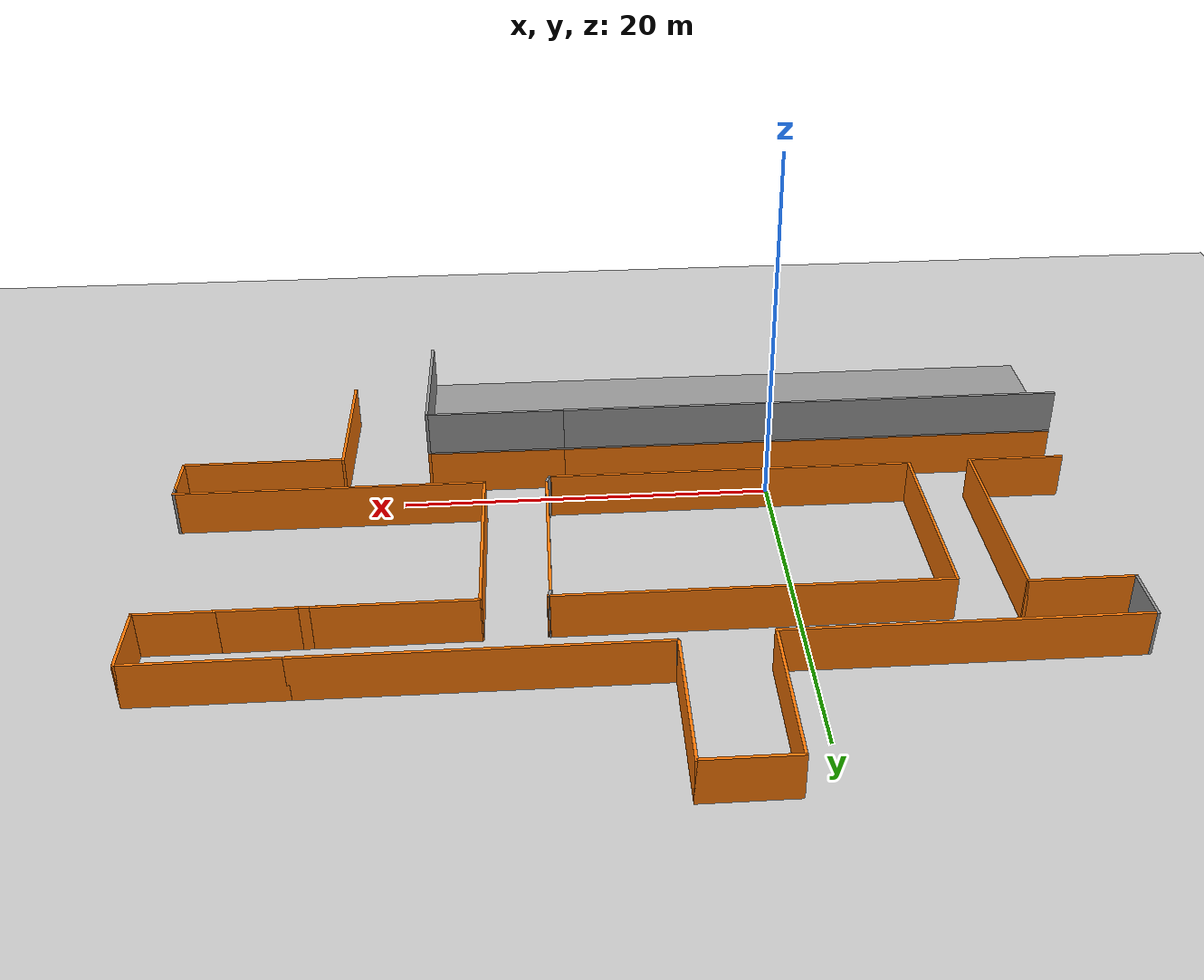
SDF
<sdf version="1.6">
 <world name="track_levine">
  <scene><ambient>0.5 0.5 0.5 1</ambient><shadows>0</shadows><background>0.7 0.7 0.7 1</background></scene>
  <light name="sun" type="directional">
   <pose>0 0 10 0 -0 0</pose>
   <diffuse>0.8 0.8 0.8 1</diffuse>
   <specular>0.1 0.1 0.1 1</specular>
   <attenuation>
    <range>1000</range>
    <constant>0.9</constant>
    <linear>0.01</linear>
    <quadratic>0.001</quadratic>
   </attenuation>
   <direction>-0.5 0.5 -1</direction>
  </light>
  <light name="Light 1" type="point">
   <pose>0 0 15 0 -0 0</pose>
   <diffuse>0.9 0.9 0.9 1</diffuse>
   <specular>0.1 0.1 0.1 1</specular>
   <attenuation>
    <constant>0.5</constant>
    <linear>0.01</linear>
    <quadratic>0</quadratic>
    <range>50</range>
   </attenuation>
   <direction>0 0 -1</direction>
   <cast_shadows>0</cast_shadows>
  </light>
  <model name="ground_plane">
   <static>1</static>
   <link name="link">
    <collision name="collision">
     <geometry><plane><normal>0 0 1</normal><size>150 150</size></plane></geometry>
     <surface><friction><ode><mu>100</mu><mu2>50</mu2></ode></friction></surface>
    </collision>
    <visual name="visual">
     <cast_shadows>0</cast_shadows>
     <geometry><plane><normal>0 0 1</normal><size>150 150</size></plane></geometry>
     <material>
      <script><uri>file://media/materials/scripts/gazebo.material</uri><name>Gazebo/Grey</name></script>
     </material>
    </visual>
   </link>
  </model>
  <gravity>0 0 -9.8</gravity>
  <magnetic_field>6e-06 2.3e-05 -4.2e-05</magnetic_field>
  <atmosphere type="adiabatic"/>
  <physics name="default_physics" default="0" type="ode">
   <max_step_size>0.001</max_step_size>
   <real_time_factor>1</real_time_factor>
   <real_time_update_rate>1000</real_time_update_rate>
  </physics>
  <spherical_coordinates>
   <surface_model>EARTH_WGS84</surface_model>
   <latitude_deg>0</latitude_deg>
   <longitude_deg>0</longitude_deg>
   <elevation>0</elevation>
   <heading_deg>0</heading_deg>
  </spherical_coordinates>
  <model name="custom_world">
   <pose>7.80179 7.20629 0 0 -0 0</pose>
   <link name="Floor_0">
    <collision name="Floor_0_Collision">
     <geometry><box><size>34.85 7.5 0.1</size></box></geometry>
     <pose>0 0 0.05 0 -0 0</pose>
    </collision>
    <visual name="Floor_0_Visual">
     <pose>0 0 0.05 0 -0 0</pose>
     <geometry><box><size>34.85 7.5 0.1</size></box></geometry>
     <material>
      <script><uri>file://media/materials/scripts/gazebo.material</uri><name>Gazebo/Grey</name></script>
      <ambient>1 1 1 1</ambient>
     </material>
    </visual>
    <pose>-6.55678 -12.2191 2.5 0 -0 0</pose>
   </link>
   <link name="Wall_12">
    <collision name="Wall_12_Collision">
     <geometry><box><size>27.5 0.15 2.5</size></box></geometry>
     <pose>0 0 1.25 0 -0 0</pose>
    </collision>
    <visual name="Wall_12_Visual">
     <pose>0 0 1.25 0 -0 0</pose>
     <geometry><box><size>27.5 0.15 2.5</size></box></geometry>
     <material>
      <script><uri>file://media/materials/scripts/gazebo.material</uri><name>Gazebo/Grey</name></script>
      <ambient>0.996078 0.47451 0.0196078 1</ambient>
     </material>
    </visual>
    <pose>-10.2318 -8.54414 0 0 -0 3.14159</pose>
   </link>
   <link name="Wall_18">
    <collision name="Wall_18_Collision">
     <geometry><box><size>7.5 0.15 2.5</size></box></geometry>
     <pose>0 0 1.25 0 -0 0</pose>
    </collision>
    <visual name="Wall_18_Visual">
     <pose>0 0 1.25 0 -0 0</pose>
     <geometry><box><size>7.5 0.15 2.5</size></box></geometry>
     <material>
      <script><uri>file://media/materials/scripts/gazebo.material</uri><name>Gazebo/Grey</name></script>
      <ambient>1 1 1 1</ambient>
     </material>
    </visual>
    <pose>7.11822 -8.54414 2.5 0 -0 0</pose>
   </link>
   <link name="Wall_19">
    <collision name="Wall_19_Collision">
     <geometry><box><size>7.5 0.15 2.5</size></box></geometry>
     <pose>0 0 1.25 0 -0 0</pose>
    </collision>
    <visual name="Wall_19_Visual">
     <pose>0 0 1.25 0 -0 0</pose>
     <geometry><box><size>7.5 0.15 2.5</size></box></geometry>
     <material>
      <script><uri>file://media/materials/scripts/gazebo.material</uri><name>Gazebo/Grey</name></script>
      <ambient>1 1 1 1</ambient>
     </material>
    </visual>
    <pose>10.7932 -12.2191 2.5 0 0 -1.5708</pose>
   </link>
   <link name="Wall_20">
    <collision name="Wall_20_Collision">
     <geometry><box><size>27.5 0.15 2.5</size></box></geometry>
     <pose>0 0 1.25 0 -0 0</pose>
    </collision>
    <visual name="Wall_20_Visual">
     <pose>0 0 1.25 0 -0 0</pose>
     <geometry><box><size>27.5 0.15 2.5</size></box></geometry>
     <material>
      <script><uri>file://media/materials/scripts/gazebo.material</uri><name>Gazebo/Grey</name></script>
      <ambient>1 1 1 1</ambient>
     </material>
    </visual>
    <pose>-10.2318 -8.54414 2.5 0 -0 3.14159</pose>
   </link>
   <link name="Wall_23">
    <collision name="Wall_23_Collision">
     <geometry><box><size>5.25 0.15 2.5</size></box></geometry>
     <pose>0 0 1.25 0 -0 0</pose>
    </collision>
    <visual name="Wall_23_Visual">
     <pose>0 0 1.25 0 -0 0</pose>
     <geometry><box><size>5.25 0.15 2.5</size></box></geometry>
     <material>
      <script><uri>file://media/materials/scripts/gazebo.material</uri><name>Gazebo/Grey</name></script>
      <ambient>0.996078 0.47451 0.0196078 1</ambient>
     </material>
    </visual>
    <pose>-21.3028 -5.8925 0 0 -0 0</pose>
   </link>
   <link name="Wall_24">
    <collision name="Wall_24_Collision">
     <geometry><box><size>11 0.15 2.5</size></box></geometry>
     <pose>0 0 1.25 0 -0 0</pose>
    </collision>
    <visual name="Wall_24_Visual">
     <pose>0 0 1.25 0 -0 0</pose>
     <geometry><box><size>11 0.15 2.5</size></box></geometry>
     <material>
      <script><uri>file://media/materials/scripts/gazebo.material</uri><name>Gazebo/Grey</name></script>
      <ambient>0.996078 0.47451 0.0196078 1</ambient>
     </material>
    </visual>
    <pose>-18.7528 -0.467495 0 0 -0 1.5708</pose>
   </link>
   <link name="Wall_25">
    <collision name="Wall_25_Collision">
     <geometry><box><size>5.5 0.15 2.5</size></box></geometry>
     <pose>0 0 1.25 0 -0 0</pose>
    </collision>
    <visual name="Wall_25_Visual">
     <pose>0 0 1.25 0 -0 0</pose>
     <geometry><box><size>5.5 0.15 2.5</size></box></geometry>
     <material>
      <script><uri>file://media/materials/scripts/gazebo.material</uri><name>Gazebo/Grey</name></script>
      <ambient>0.996078 0.47451 0.0196078 1</ambient>
     </material>
    </visual>
    <pose>-21.4278 4.95751 0 0 -0 3.14159</pose>
   </link>
   <link name="Wall_26">
    <collision name="Wall_26_Collision">
     <geometry><box><size>3 0.15 2.5</size></box></geometry>
     <pose>0 0 1.25 0 -0 0</pose>
    </collision>
    <visual name="Wall_26_Visual">
     <pose>0 0 1.25 0 -0 0</pose>
     <geometry><box><size>3 0.15 2.5</size></box></geometry>
     <material>
      <script><uri>file://media/materials/scripts/gazebo.material</uri><name>Gazebo/Grey</name></script>
      <ambient>1 1 1 1</ambient>
     </material>
    </visual>
    <pose>-24.1028 6.38251 0 0 -0 1.5708</pose>
   </link>
   <link name="Wall_27">
    <collision name="Wall_27_Collision">
     <geometry><box><size>18.25 0.15 2.5</size></box></geometry>
     <pose>0 0 1.25 0 -0 0</pose>
    </collision>
    <visual name="Wall_27_Visual">
     <pose>0 0 1.25 0 -0 0</pose>
     <geometry><box><size>18.25 0.15 2.5</size></box></geometry>
     <material>
      <script><uri>file://media/materials/scripts/gazebo.material</uri><name>Gazebo/Grey</name></script>
      <ambient>0.996078 0.47451 0.0196078 1</ambient>
     </material>
    </visual>
    <pose>-15.0528 7.8075 0 0 -0 0</pose>
   </link>
   <link name="Wall_28">
    <collision name="Wall_28_Collision">
     <geometry><box><size>8.25 0.15 2.5</size></box></geometry>
     <pose>0 0 1.25 0 -0 0</pose>
    </collision>
    <visual name="Wall_28_Visual">
     <pose>0 0 1.25 0 -0 0</pose>
     <geometry><box><size>8.25 0.15 2.5</size></box></geometry>
     <material>
      <script><uri>file://media/materials/scripts/gazebo.material</uri><name>Gazebo/Grey</name></script>
      <ambient>0.996078 0.47451 0.0196078 1</ambient>
     </material>
    </visual>
    <pose>-6.00276 11.8575 0 0 -0 1.5708</pose>
   </link>
   <link name="Wall_29">
    <collision name="Wall_29_Collision">
     <geometry><box><size>4.75 0.15 2.5</size></box></geometry>
     <pose>0 0 1.25 0 -0 0</pose>
    </collision>
    <visual name="Wall_29_Visual">
     <pose>0 0 1.25 0 -0 0</pose>
     <geometry><box><size>4.75 0.15 2.5</size></box></geometry>
     <material>
      <script><uri>file://media/materials/scripts/gazebo.material</uri><name>Gazebo/Grey</name></script>
      <ambient>0.996078 0.47451 0.0196078 1</ambient>
     </material>
    </visual>
    <pose>-3.70276 15.9075 0 0 -0 0</pose>
   </link>
   <link name="Wall_30">
    <collision name="Wall_30_Collision">
     <geometry><box><size>7.75 0.15 2.5</size></box></geometry>
     <pose>0 0 1.25 0 -0 0</pose>
    </collision>
    <visual name="Wall_30_Visual">
     <pose>0 0 1.25 0 -0 0</pose>
     <geometry><box><size>7.75 0.15 2.5</size></box></geometry>
     <material>
      <script><uri>file://media/materials/scripts/gazebo.material</uri><name>Gazebo/Grey</name></script>
      <ambient>0.996078 0.47451 0.0196078 1</ambient>
     </material>
    </visual>
    <pose>-1.40276 12.1075 0 0 0 -1.5708</pose>
   </link>
   <link name="Wall_31">
    <collision name="Wall_31_Collision">
     <geometry><box><size>0.25 0.15 2.5</size></box></geometry>
     <pose>0 0 1.25 0 -0 0</pose>
    </collision>
    <visual name="Wall_31_Visual">
     <pose>0 0 1.25 0 -0 0</pose>
     <geometry><box><size>0.25 0.15 2.5</size></box></geometry>
     <material>
      <script><uri>file://media/materials/scripts/gazebo.material</uri><name>Gazebo/Grey</name></script>
      <ambient>1 1 1 1</ambient>
     </material>
    </visual>
    <pose>-1.37776 8.2642 0 0 0 -1.0472</pose>
   </link>
   <link name="Wall_32">
    <collision name="Wall_32_Collision">
     <geometry><box><size>18 0.15 2.5</size></box></geometry>
     <pose>0 0 1.25 0 -0 0</pose>
    </collision>
    <visual name="Wall_32_Visual">
     <pose>0 0 1.25 0 -0 0</pose>
     <geometry><box><size>18 0.15 2.5</size></box></geometry>
     <material>
      <script><uri>file://media/materials/scripts/gazebo.material</uri><name>Gazebo/Grey</name></script>
      <ambient>0.996078 0.47451 0.0196078 1</ambient>
     </material>
    </visual>
    <pose>7.57224 8.2209 0 0 -0 0</pose>
   </link>
   <link name="Wall_33">
    <collision name="Wall_33_Collision">
     <geometry><box><size>7.75 0.15 2.5</size></box></geometry>
     <pose>0 0 1.25 0 -0 0</pose>
    </collision>
    <visual name="Wall_33_Visual">
     <pose>0 0 1.25 0 -0 0</pose>
     <geometry><box><size>7.75 0.15 2.5</size></box></geometry>
     <material>
      <script><uri>file://media/materials/scripts/gazebo.material</uri><name>Gazebo/Grey</name></script>
      <ambient>0.996078 0.47451 0.0196078 1</ambient>
     </material>
    </visual>
    <pose>20.2972 8.2209 0 0 -0 0</pose>
   </link>
   <link name="Wall_34">
    <collision name="Wall_34_Collision">
     <geometry><box><size>3.75 0.15 2.5</size></box></geometry>
     <pose>0 0 1.25 0 -0 0</pose>
    </collision>
    <visual name="Wall_34_Visual">
     <pose>0 0 1.25 0 -0 0</pose>
     <geometry><box><size>3.75 0.15 2.5</size></box></geometry>
     <material>
      <script><uri>file://media/materials/scripts/gazebo.material</uri><name>Gazebo/Grey</name></script>
      <ambient>0.996078 0.47451 0.0196078 1</ambient>
     </material>
    </visual>
    <pose>24.0972 6.4209 0 0 0 -1.5708</pose>
   </link>
   <link name="Wall_35">
    <collision name="Wall_35_Collision">
     <geometry><box><size>4 0.15 2.5</size></box></geometry>
     <pose>0 0 1.25 0 -0 0</pose>
    </collision>
    <visual name="Wall_35_Visual">
     <pose>0 0 1.25 0 -0 0</pose>
     <geometry><box><size>4 0.15 2.5</size></box></geometry>
     <material>
      <script><uri>file://media/materials/scripts/gazebo.material</uri><name>Gazebo/Grey</name></script>
      <ambient>0.996078 0.47451 0.0196078 1</ambient>
     </material>
    </visual>
    <pose>22.1722 4.6209 0 0 -0 3.14159</pose>
   </link>
   <link name="Wall_36">
    <collision name="Wall_36_Collision">
     <geometry><box><size>4 0.15 2.5</size></box></geometry>
     <pose>0 0 1.25 0 -0 0</pose>
    </collision>
    <visual name="Wall_36_Visual">
     <pose>0 0 1.25 0 -0 0</pose>
     <geometry><box><size>4 0.15 2.5</size></box></geometry>
     <material>
      <script><uri>file://media/materials/scripts/gazebo.material</uri><name>Gazebo/Grey</name></script>
      <ambient>0.996078 0.47451 0.0196078 1</ambient>
     </material>
    </visual>
    <pose>18.3222 4.6209 0 0 -0 3.14159</pose>
   </link>
   <link name="Wall_37">
    <collision name="Wall_37_Collision">
     <geometry><box><size>1.5 0.15 2.5</size></box></geometry>
     <pose>0 0 1.25 0 -0 0</pose>
    </collision>
    <visual name="Wall_37_Visual">
     <pose>0 0 1.25 0 -0 0</pose>
     <geometry><box><size>1.5 0.15 2.5</size></box></geometry>
     <material>
      <script><uri>file://media/materials/scripts/gazebo.material</uri><name>Gazebo/Grey</name></script>
      <ambient>0.996078 0.47451 0.0196078 1</ambient>
     </material>
    </visual>
    <pose>15.7222 4.6209 0 0 -0 3.14159</pose>
   </link>
   <link name="Wall_41">
    <collision name="Wall_41_Collision">
     <geometry><box><size>7.75 0.15 2.5</size></box></geometry>
     <pose>0 0 1.25 0 -0 0</pose>
    </collision>
    <visual name="Wall_41_Visual">
     <pose>0 0 1.25 0 -0 0</pose>
     <geometry><box><size>7.75 0.15 2.5</size></box></geometry>
     <material>
      <script><uri>file://media/materials/scripts/gazebo.material</uri><name>Gazebo/Grey</name></script>
      <ambient>0.996078 0.47451 0.0196078 1</ambient>
     </material>
    </visual>
    <pose>15.5028 -12.1075 0 0 -0 1.5708</pose>
   </link>
   <link name="Wall_42">
    <collision name="Wall_42_Collision">
     <geometry><box><size>8.75 0.15 2.5</size></box></geometry>
     <pose>0 0 1.25 0 -0 0</pose>
    </collision>
    <visual name="Wall_42_Visual">
     <pose>0 0 1.25 0 -0 0</pose>
     <geometry><box><size>8.75 0.15 2.5</size></box></geometry>
     <material>
      <script><uri>file://media/materials/scripts/gazebo.material</uri><name>Gazebo/Grey</name></script>
      <ambient>0.996078 0.47451 0.0196078 1</ambient>
     </material>
    </visual>
    <pose>19.8028 -8.30751 0 0 -0 0</pose>
   </link>
   <link name="Wall_45">
    <collision name="Wall_45_Collision">
     <geometry><box><size>2.5 0.15 2.5</size></box></geometry>
     <pose>0 0 1.25 0 -0 0</pose>
    </collision>
    <visual name="Wall_45_Visual">
     <pose>0 0 1.25 0 -0 0</pose>
     <geometry><box><size>2.5 0.15 2.5</size></box></geometry>
     <material>
      <script><uri>file://media/materials/scripts/gazebo.material</uri><name>Gazebo/Grey</name></script>
      <ambient>0.996078 0.47451 0.0196078 1</ambient>
     </material>
    </visual>
    <pose>24.1028 -7.13251 0 0 -0 1.5708</pose>
   </link>
   <link name="Wall_46">
    <collision name="Wall_46_Collision">
     <geometry><box><size>0.25 0.15 2.5</size></box></geometry>
     <pose>0 0 1.25 0 -0 0</pose>
    </collision>
    <visual name="Wall_46_Visual">
     <pose>0 0 1.25 0 -0 0</pose>
     <geometry><box><size>0.25 0.15 2.5</size></box></geometry>
     <material>
      <script><uri>file://media/materials/scripts/gazebo.material</uri><name>Gazebo/Grey</name></script>
      <ambient>1 1 1 1</ambient>
     </material>
    </visual>
    <pose>24.1028 -5.90751 0 0 -0 1.5708</pose>
   </link>
   <link name="Wall_47">
    <collision name="Wall_47_Collision">
     <geometry><box><size>0.5 0.15 2.5</size></box></geometry>
     <pose>0 0 1.25 0 -0 0</pose>
    </collision>
    <visual name="Wall_47_Visual">
     <pose>0 0 1.25 0 -0 0</pose>
     <geometry><box><size>0.5 0.15 2.5</size></box></geometry>
     <material>
      <script><uri>file://media/materials/scripts/gazebo.material</uri><name>Gazebo/Grey</name></script>
      <ambient>1 1 1 1</ambient>
     </material>
    </visual>
    <pose>24.1028 -5.68251 0 0 -0 1.5708</pose>
   </link>
   <link name="Wall_48">
    <collision name="Wall_48_Collision">
     <geometry><box><size>16.5 0.15 2.5</size></box></geometry>
     <pose>0 0 1.25 0 -0 0</pose>
    </collision>
    <visual name="Wall_48_Visual">
     <pose>0 0 1.25 0 -0 0</pose>
     <geometry><box><size>16.5 0.15 2.5</size></box></geometry>
     <material>
      <script><uri>file://media/materials/scripts/gazebo.material</uri><name>Gazebo/Grey</name></script>
      <ambient>0.996078 0.47451 0.0196078 1</ambient>
     </material>
    </visual>
    <pose>15.9278 -5.50751 0 0 -0 3.14159</pose>
   </link>
   <link name="Wall_49">
    <collision name="Wall_49_Collision">
     <geometry><box><size>10.25 0.15 2.5</size></box></geometry>
     <pose>0 0 1.25 0 -0 0</pose>
    </collision>
    <visual name="Wall_49_Visual">
     <pose>0 0 1.25 0 -0 0</pose>
     <geometry><box><size>10.25 0.15 2.5</size></box></geometry>
     <material>
      <script><uri>file://media/materials/scripts/gazebo.material</uri><name>Gazebo/Grey</name></script>
      <ambient>0.996078 0.47451 0.0196078 1</ambient>
     </material>
    </visual>
    <pose>7.75276 -0.457506 0 0 -0 1.5708</pose>
   </link>
   <link name="Wall_52">
    <collision name="Wall_52_Collision">
     <geometry><box><size>8.12227 0.15 2.5</size></box></geometry>
     <pose>0 0 1.25 0 -0 0</pose>
    </collision>
    <visual name="Wall_52_Visual">
     <pose>0 0 1.25 0 -0 0</pose>
     <geometry><box><size>8.12227 0.15 2.5</size></box></geometry>
     <material>
      <script><uri>file://media/materials/scripts/gazebo.material</uri><name>Gazebo/Grey</name></script>
      <ambient>0.996078 0.47451 0.0196078 1</ambient>
     </material>
    </visual>
    <pose>11.7389 4.61099 0 0 0 -3.13695</pose>
   </link>
   <link name="Wall_54">
    <collision name="Wall_54_Collision">
     <geometry><box><size>9.75 0.15 2.5</size></box></geometry>
     <pose>0 0 1.25 0 -0 0</pose>
    </collision>
    <visual name="Wall_54_Visual">
     <pose>0 0 1.25 0 -0 0</pose>
     <geometry><box><size>9.75 0.15 2.5</size></box></geometry>
     <material>
      <script><uri>file://media/materials/scripts/gazebo.material</uri><name>Gazebo/Grey</name></script>
      <ambient>0.996078 0.47451 0.0196078 1</ambient>
     </material>
    </visual>
    <pose>4.40382 -0.599565 0 0 -0 1.5708</pose>
   </link>
   <link name="Wall_55">
    <collision name="Wall_55_Collision">
     <geometry><box><size>0.5 0.15 2.5</size></box></geometry>
     <pose>0 0 1.25 0 -0 0</pose>
    </collision>
    <visual name="Wall_55_Visual">
     <pose>0 0 1.25 0 -0 0</pose>
     <geometry><box><size>0.5 0.15 2.5</size></box></geometry>
     <material>
      <script><uri>file://media/materials/scripts/gazebo.material</uri><name>Gazebo/Grey</name></script>
      <ambient>1 1 1 1</ambient>
     </material>
    </visual>
    <pose>4.44911 4.36947 0 0 -0 1.309</pose>
   </link>
   <link name="Wall_56">
    <collision name="Wall_56_Collision">
     <geometry><box><size>20 0.15 2.5</size></box></geometry>
     <pose>0 0 1.25 0 -0 0</pose>
    </collision>
    <visual name="Wall_56_Visual">
     <pose>0 0 1.25 0 -0 0</pose>
     <geometry><box><size>20 0.15 2.5</size></box></geometry>
     <material>
      <script><uri>file://media/materials/scripts/gazebo.material</uri><name>Gazebo/Grey</name></script>
      <ambient>0.996078 0.47451 0.0196078 1</ambient>
     </material>
    </visual>
    <pose>-5.43059 4.53851 0 0 -0 3.14159</pose>
   </link>
   <link name="Wall_57">
    <collision name="Wall_57_Collision">
     <geometry><box><size>10.5 0.15 2.5</size></box></geometry>
     <pose>0 0 1.25 0 -0 0</pose>
    </collision>
    <visual name="Wall_57_Visual">
     <pose>0 0 1.25 0 -0 0</pose>
     <geometry><box><size>10.5 0.15 2.5</size></box></geometry>
     <material>
      <script><uri>file://media/materials/scripts/gazebo.material</uri><name>Gazebo/Grey</name></script>
      <ambient>0.996078 0.47451 0.0196078 1</ambient>
     </material>
    </visual>
    <pose>-15.3556 -0.636491 0 0 0 -1.5708</pose>
   </link>
   <link name="Wall_58">
    <collision name="Wall_58_Collision">
     <geometry><box><size>19.75 0.15 2.5</size></box></geometry>
     <pose>0 0 1.25 0 -0 0</pose>
    </collision>
    <visual name="Wall_58_Visual">
     <pose>0 0 1.25 0 -0 0</pose>
     <geometry><box><size>19.75 0.15 2.5</size></box></geometry>
     <material>
      <script><uri>file://media/materials/scripts/gazebo.material</uri><name>Gazebo/Grey</name></script>
      <ambient>0.996078 0.47451 0.0196078 1</ambient>
     </material>
    </visual>
    <pose>-5.55559 -5.81149 0 0 -0 0</pose>
   </link>
   <link name="Wall_59">
    <collision name="Wall_59_Collision">
     <geometry><box><size>0.15 0.15 2.5</size></box></geometry>
     <pose>0 0 1.25 0 -0 0</pose>
    </collision>
    <visual name="Wall_59_Visual">
     <pose>0 0 1.25 0 -0 0</pose>
     <geometry><box><size>0.15 0.15 2.5</size></box></geometry>
     <material>
      <script><uri>file://media/materials/scripts/gazebo.material</uri><name>Gazebo/Grey</name></script>
      <ambient>1 1 1 1</ambient>
     </material>
    </visual>
    <pose>4.24441 -5.81149 0 0 -0 0</pose>
   </link>
   <link name="Wall_60">
    <collision name="Wall_60_Collision">
     <geometry><box><size>0.591696 0.15 2.5</size></box></geometry>
     <pose>0 0 1.25 0 -0 0</pose>
    </collision>
    <visual name="Wall_60_Visual">
     <pose>0 0 1.25 0 -0 0</pose>
     <geometry><box><size>0.591696 0.15 2.5</size></box></geometry>
     <material>
      <script><uri>file://media/materials/scripts/gazebo.material</uri><name>Gazebo/Grey</name></script>
      <ambient>1 1 1 1</ambient>
     </material>
    </visual>
    <pose>4.32411 -5.60553 0 0 -0 1.20155</pose>
   </link>
   <link name="Wall_7">
    <collision name="Wall_7_Collision">
     <geometry><box><size>7.5 0.15 2.5</size></box></geometry>
     <pose>0 0 1.25 0 -0 0</pose>
    </collision>
    <visual name="Wall_7_Visual">
     <pose>0 0 1.25 0 -0 0</pose>
     <geometry><box><size>7.5 0.15 2.5</size></box></geometry>
     <material>
      <script><uri>file://media/materials/scripts/gazebo.material</uri><name>Gazebo/Grey</name></script>
      <ambient>0.996078 0.47451 0.0196078 1</ambient>
     </material>
    </visual>
    <pose>7.11822 -8.54414 0 0 -0 0</pose>
   </link>
   <link name="Wall_8">
    <collision name="Wall_8_Collision">
     <geometry><box><size>7.5 0.15 2.5</size></box></geometry>
     <pose>0 0 1.25 0 -0 0</pose>
    </collision>
    <visual name="Wall_8_Visual">
     <pose>0 0 1.25 0 -0 0</pose>
     <geometry><box><size>7.5 0.15 2.5</size></box></geometry>
     <material>
      <script><uri>file://media/materials/scripts/gazebo.material</uri><name>Gazebo/Grey</name></script>
      <ambient>0.996078 0.47451 0.0196078 1</ambient>
     </material>
    </visual>
    <pose>10.7932 -12.2191 0 0 0 -1.5708</pose>
   </link>
   <static>1</static>
  </model>
 </world>
</sdf>
